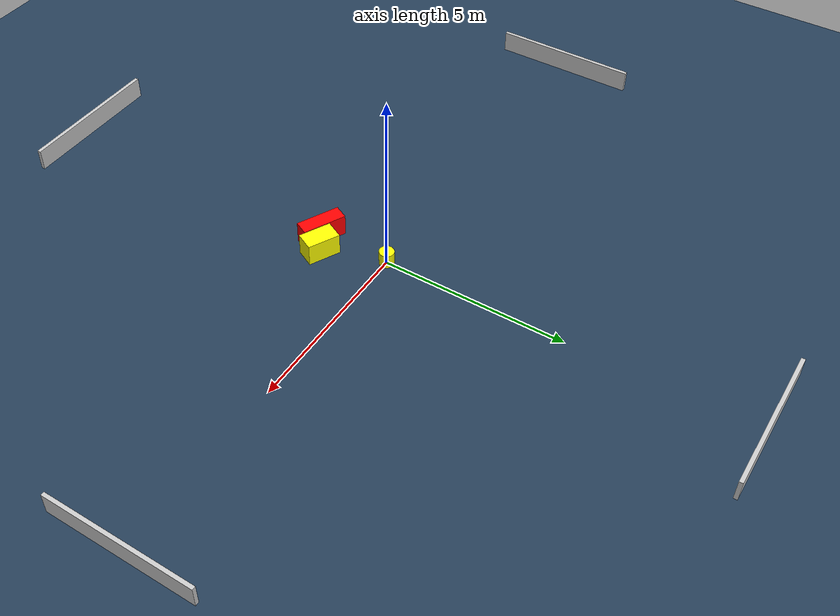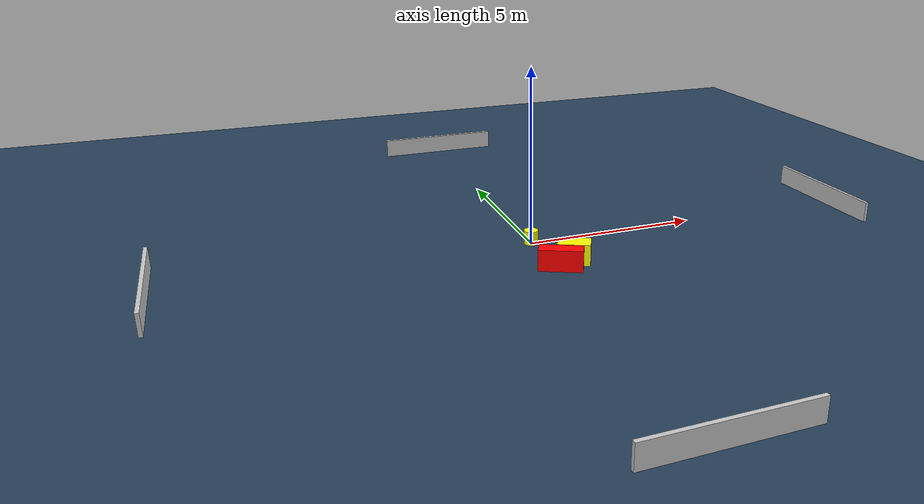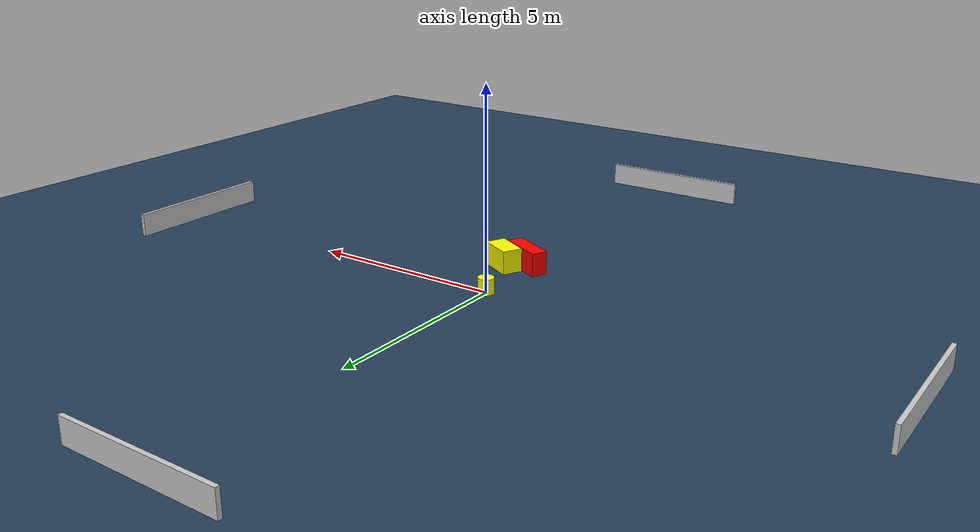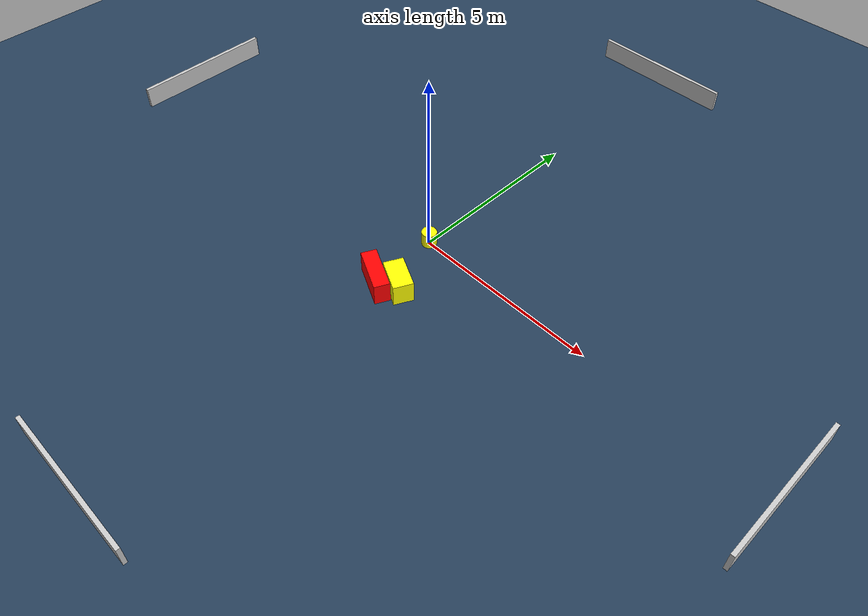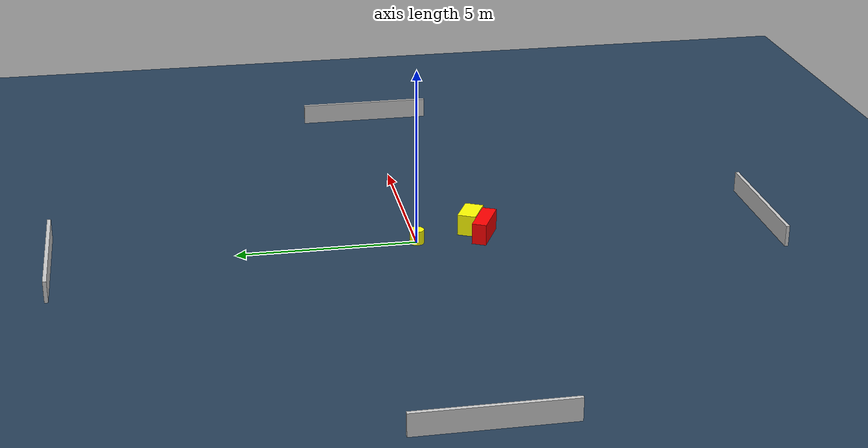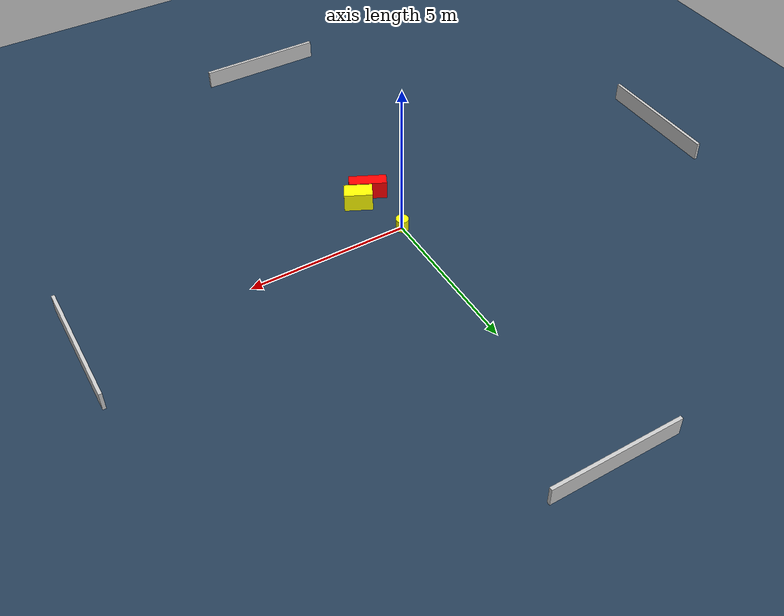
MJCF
<?xml version="1.0" ?>
<mujoco model="generated_environment">
  <option timestep="0.01" integrator="RK4" cone="elliptic"/>
  <default>
    <geom density="1"/>
  </default>
  <asset>
    <texture builtin="gradient" height="3072" name="skybox" rgb1="0.3 0.5 0.7" rgb2="0 0 0" type="skybox" width="512"/>
    <texture builtin="checker" height="300" name="groundplane" rgb1="0.2 0.3 0.4" rgb2="0.1 0.2 0.3" type="2d" width="300"/>
    <material name="groundplane" reflectance="0.2" texrepeat="5 5" texture="groundplane"/>
  </asset>
  <worldbody>
    <light dir="0 0 -1" directional="true" pos="0 0 1.5"/>
    <geom condim="3" friction="0.5 0.005 0.001" material="groundplane" name="floor" pos="0 0 0" size="0 0 0.05" type="plane"/>
    <body name="walls">
      <geom name="wall_1" condim="4" pos="-10.0 0.0 0.3" rgba="0.800000011920929 0.800000011920929 0.800000011920929 1.0" size="0.05 2.0 0.3" type="box"/>
      <geom name="wall_2" condim="4" pos="10.0 0.0 0.3" rgba="0.800000011920929 0.800000011920929 0.800000011920929 1.0" size="0.05 2.0 0.3" type="box"/>
      <geom name="wall_3" condim="4" pos="0.0 -10.0 0.3" rgba="0.800000011920929 0.800000011920929 0.800000011920929 1.0" size="2.0 0.05 0.3" type="box"/>
      <geom name="wall_4" condim="4" pos="0.0 10.0 0.3" rgba="0.800000011920929 0.800000011920929 0.800000011920929 1.0" size="2.0 0.05 0.3" type="box"/>
    </body>
    <body name="robot">
      <joint name="joint_x" type="slide" pos="0 0 0" axis="1 0 0"/>
      <joint name="joint_y" type="slide" pos="0 0 0" axis="0 1 0"/>
      <geom name="robot" type="cylinder" pos="0.0 0.0 0.2" size="0.2 0.2 0.0" mass="5.0" friction="1.0 0.005 0.0001" condim="4" rgba="1.0 1.0 0.0 1.0"/>
    </body>
    <body name="obstacle_1_movable">
      <geom name="obstacle_1_movable" condim="4" pos="0.6055223182772805 -1.6369096320904077 0.3" euler="0 0 333.46554272878024" friction="0.0 0.005 0.001" rgba="1.0 1.0 0.0 1.0" size="0.4407297846817922 0.2595428663000306 0.3" type="box" mass="0.1"/>
      <joint type="free"/>
    </body>
    <body name="obstacle_2_static">
      <geom name="obstacle_2_static" condim="4" pos="0.10317993712826809 -1.9280363852878144 0.3" euler="0 0 153.8032804378273" friction="0.0 0.005 0.001" rgba="1.0 0.0 0.0 1.0" size="0.5920846398139579 0.2022865313668044 0.3" type="box"/>
    </body>
  </worldbody>
  <actuator>
    <motor name="actuator_x" joint="joint_x" gear="1" ctrlrange="-1 1"/>
    <motor name="actuator_y" joint="joint_y" gear="1" ctrlrange="-1 1"/>
  </actuator>
</mujoco>
